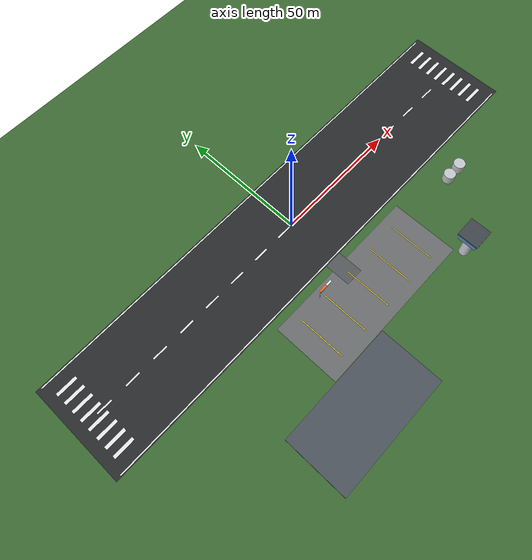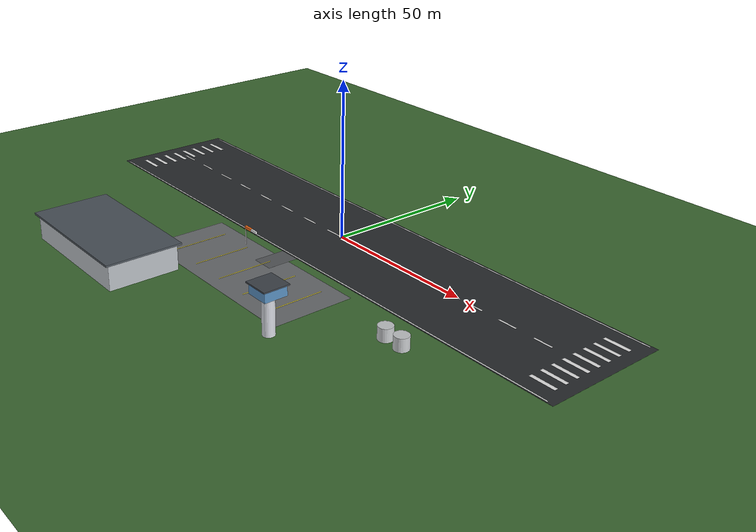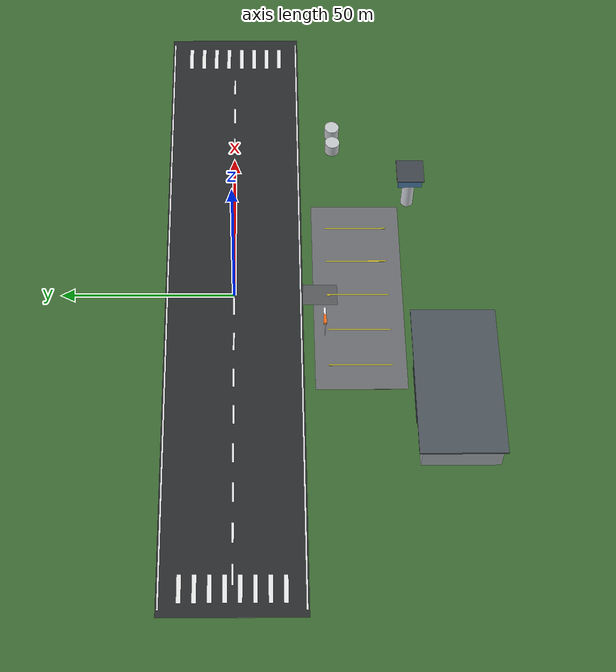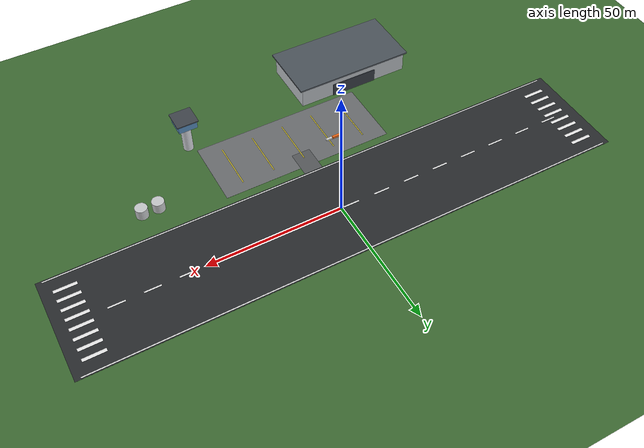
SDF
<sdf version="1.9">
 <world name="quad">
  <model name="grass">
   <static>true</static>
   <link name="link">
    <collision name="collision">
     <geometry><plane><normal>0 0 1</normal><size>1000 1000</size></plane></geometry>
    </collision>
    <visual name="visual">
     <geometry><plane><normal>0 0 1</normal><size>1000 1000</size></plane></geometry>
     <material><diffuse>0.24 0.42 0.20 1</diffuse></material>
    </visual>
   </link>
  </model>
  <model name="runway">
   <static>true</static>
   <link name="surface">
    <visual name="asphalt">
     <pose>0 0 0.02 0 0 0</pose>
     <geometry><box><size>200 40 0.04</size></box></geometry>
     <material><diffuse>0.16 0.17 0.18 1</diffuse></material>
    </visual>
    <visual name="edge_north">
     <pose>0 19.4 0.045 0 0 0</pose>
     <geometry><box><size>196 0.45 0.01</size></box></geometry>
     <material><diffuse>0.92 0.92 0.92 1</diffuse></material>
    </visual>
    <visual name="edge_south">
     <pose>0 -19.4 0.045 0 0 0</pose>
     <geometry><box><size>196 0.45 0.01</size></box></geometry>
     <material><diffuse>0.92 0.92 0.92 1</diffuse></material>
    </visual>
    <visual name="centre_00">
     <pose>-88 0 0.046 0 0 0</pose>
     <geometry><box><size>6 0.6 0.01</size></box></geometry>
     <material><diffuse>0.92 0.92 0.92 1</diffuse></material>
    </visual>
    <visual name="centre_01">
     <pose>-76 0 0.046 0 0 0</pose>
     <geometry><box><size>6 0.6 0.01</size></box></geometry>
     <material><diffuse>0.92 0.92 0.92 1</diffuse></material>
    </visual>
    <visual name="centre_02">
     <pose>-64 0 0.046 0 0 0</pose>
     <geometry><box><size>6 0.6 0.01</size></box></geometry>
     <material><diffuse>0.92 0.92 0.92 1</diffuse></material>
    </visual>
    <visual name="centre_03">
     <pose>-52 0 0.046 0 0 0</pose>
     <geometry><box><size>6 0.6 0.01</size></box></geometry>
     <material><diffuse>0.92 0.92 0.92 1</diffuse></material>
    </visual>
    <visual name="centre_04">
     <pose>-40 0 0.046 0 0 0</pose>
     <geometry><box><size>6 0.6 0.01</size></box></geometry>
     <material><diffuse>0.92 0.92 0.92 1</diffuse></material>
    </visual>
    <visual name="centre_05">
     <pose>-28 0 0.046 0 0 0</pose>
     <geometry><box><size>6 0.6 0.01</size></box></geometry>
     <material><diffuse>0.92 0.92 0.92 1</diffuse></material>
    </visual>
    <visual name="centre_06">
     <pose>-16 0 0.046 0 0 0</pose>
     <geometry><box><size>6 0.6 0.01</size></box></geometry>
     <material><diffuse>0.92 0.92 0.92 1</diffuse></material>
    </visual>
    <visual name="centre_07">
     <pose>-4 0 0.046 0 0 0</pose>
     <geometry><box><size>6 0.6 0.01</size></box></geometry>
     <material><diffuse>0.92 0.92 0.92 1</diffuse></material>
    </visual>
    <visual name="centre_08">
     <pose>8 0 0.046 0 0 0</pose>
     <geometry><box><size>6 0.6 0.01</size></box></geometry>
     <material><diffuse>0.92 0.92 0.92 1</diffuse></material>
    </visual>
    <visual name="centre_09">
     <pose>20 0 0.046 0 0 0</pose>
     <geometry><box><size>6 0.6 0.01</size></box></geometry>
     <material><diffuse>0.92 0.92 0.92 1</diffuse></material>
    </visual>
    <visual name="centre_10">
     <pose>32 0 0.046 0 0 0</pose>
     <geometry><box><size>6 0.6 0.01</size></box></geometry>
     <material><diffuse>0.92 0.92 0.92 1</diffuse></material>
    </visual>
    <visual name="centre_11">
     <pose>44 0 0.046 0 0 0</pose>
     <geometry><box><size>6 0.6 0.01</size></box></geometry>
     <material><diffuse>0.92 0.92 0.92 1</diffuse></material>
    </visual>
    <visual name="centre_12">
     <pose>56 0 0.046 0 0 0</pose>
     <geometry><box><size>6 0.6 0.01</size></box></geometry>
     <material><diffuse>0.92 0.92 0.92 1</diffuse></material>
    </visual>
    <visual name="centre_13">
     <pose>68 0 0.046 0 0 0</pose>
     <geometry><box><size>6 0.6 0.01</size></box></geometry>
     <material><diffuse>0.92 0.92 0.92 1</diffuse></material>
    </visual>
    <visual name="centre_14">
     <pose>80 0 0.046 0 0 0</pose>
     <geometry><box><size>6 0.6 0.01</size></box></geometry>
     <material><diffuse>0.92 0.92 0.92 1</diffuse></material>
    </visual>
    <visual name="threshold_w_00">
     <pose>-92 -14 0.046 0 0 0</pose>
     <geometry><box><size>8 1.2 0.01</size></box></geometry>
     <material><diffuse>0.92 0.92 0.92 1</diffuse></material>
    </visual>
    <visual name="threshold_w_01">
     <pose>-92 -10 0.046 0 0 0</pose>
     <geometry><box><size>8 1.2 0.01</size></box></geometry>
     <material><diffuse>0.92 0.92 0.92 1</diffuse></material>
    </visual>
    <visual name="threshold_w_02">
     <pose>-92 -6 0.046 0 0 0</pose>
     <geometry><box><size>8 1.2 0.01</size></box></geometry>
     <material><diffuse>0.92 0.92 0.92 1</diffuse></material>
    </visual>
    <visual name="threshold_w_03">
     <pose>-92 -2 0.046 0 0 0</pose>
     <geometry><box><size>8 1.2 0.01</size></box></geometry>
     <material><diffuse>0.92 0.92 0.92 1</diffuse></material>
    </visual>
    <visual name="threshold_w_04">
     <pose>-92 2 0.046 0 0 0</pose>
     <geometry><box><size>8 1.2 0.01</size></box></geometry>
     <material><diffuse>0.92 0.92 0.92 1</diffuse></material>
    </visual>
    <visual name="threshold_w_05">
     <pose>-92 6 0.046 0 0 0</pose>
     <geometry><box><size>8 1.2 0.01</size></box></geometry>
     <material><diffuse>0.92 0.92 0.92 1</diffuse></material>
    </visual>
    <visual name="threshold_w_06">
     <pose>-92 10 0.046 0 0 0</pose>
     <geometry><box><size>8 1.2 0.01</size></box></geometry>
     <material><diffuse>0.92 0.92 0.92 1</diffuse></material>
    </visual>
    <visual name="threshold_w_07">
     <pose>-92 14 0.046 0 0 0</pose>
     <geometry><box><size>8 1.2 0.01</size></box></geometry>
     <material><diffuse>0.92 0.92 0.92 1</diffuse></material>
    </visual>
    <visual name="threshold_e_00">
     <pose>92 -14 0.046 0 0 0</pose>
     <geometry><box><size>8 1.2 0.01</size></box></geometry>
     <material><diffuse>0.92 0.92 0.92 1</diffuse></material>
    </visual>
    <visual name="threshold_e_01">
     <pose>92 -10 0.046 0 0 0</pose>
     <geometry><box><size>8 1.2 0.01</size></box></geometry>
     <material><diffuse>0.92 0.92 0.92 1</diffuse></material>
    </visual>
    <visual name="threshold_e_02">
     <pose>92 -6 0.046 0 0 0</pose>
     <geometry><box><size>8 1.2 0.01</size></box></geometry>
     <material><diffuse>0.92 0.92 0.92 1</diffuse></material>
    </visual>
    <visual name="threshold_e_03">
     <pose>92 -2 0.046 0 0 0</pose>
     <geometry><box><size>8 1.2 0.01</size></box></geometry>
     <material><diffuse>0.92 0.92 0.92 1</diffuse></material>
    </visual>
    <visual name="threshold_e_04">
     <pose>92 2 0.046 0 0 0</pose>
     <geometry><box><size>8 1.2 0.01</size></box></geometry>
     <material><diffuse>0.92 0.92 0.92 1</diffuse></material>
    </visual>
    <visual name="threshold_e_05">
     <pose>92 6 0.046 0 0 0</pose>
     <geometry><box><size>8 1.2 0.01</size></box></geometry>
     <material><diffuse>0.92 0.92 0.92 1</diffuse></material>
    </visual>
    <visual name="threshold_e_06">
     <pose>92 10 0.046 0 0 0</pose>
     <geometry><box><size>8 1.2 0.01</size></box></geometry>
     <material><diffuse>0.92 0.92 0.92 1</diffuse></material>
    </visual>
    <visual name="threshold_e_07">
     <pose>92 14 0.046 0 0 0</pose>
     <geometry><box><size>8 1.2 0.01</size></box></geometry>
     <material><diffuse>0.92 0.92 0.92 1</diffuse></material>
    </visual>
   </link>
  </model>
  <model name="apron">
   <static>true</static>
   <link name="link">
    <visual name="concrete">
     <pose>0 -36 0.015 0 0 0</pose>
     <geometry><box><size>64 26 0.03</size></box></geometry>
     <material><diffuse>0.42 0.43 0.44 1</diffuse></material>
    </visual>
    <visual name="taxiway">
     <pose>0 -23 0.032 0 0 0</pose>
     <geometry><box><size>7 14 0.01</size></box></geometry>
     <material><diffuse>0.34 0.35 0.36 1</diffuse></material>
    </visual>
    <visual name="stand_00">
     <pose>-24 -36 0.033 0 0 0</pose>
     <geometry><box><size>0.4 18 0.01</size></box></geometry>
     <material><diffuse>0.85 0.78 0.20 1</diffuse></material>
    </visual>
    <visual name="stand_01">
     <pose>-12 -36 0.033 0 0 0</pose>
     <geometry><box><size>0.4 18 0.01</size></box></geometry>
     <material><diffuse>0.85 0.78 0.20 1</diffuse></material>
    </visual>
    <visual name="stand_02">
     <pose>0 -36 0.033 0 0 0</pose>
     <geometry><box><size>0.4 18 0.01</size></box></geometry>
     <material><diffuse>0.85 0.78 0.20 1</diffuse></material>
    </visual>
    <visual name="stand_03">
     <pose>12 -36 0.033 0 0 0</pose>
     <geometry><box><size>0.4 18 0.01</size></box></geometry>
     <material><diffuse>0.85 0.78 0.20 1</diffuse></material>
    </visual>
    <visual name="stand_04">
     <pose>24 -36 0.033 0 0 0</pose>
     <geometry><box><size>0.4 18 0.01</size></box></geometry>
     <material><diffuse>0.85 0.78 0.20 1</diffuse></material>
    </visual>
   </link>
  </model>
  <model name="hangar">
   <static>true</static>
   <link name="link">
    <visual name="body">
     <pose>-34 -62 4 0 0 0</pose>
     <geometry><box><size>44 22 8</size></box></geometry>
     <material><diffuse>0.72 0.74 0.76 1</diffuse></material>
    </visual>
    <visual name="roof">
     <pose>-34 -62 8.3 0 0 0</pose>
     <geometry><box><size>46 24 0.6</size></box></geometry>
     <material><diffuse>0.30 0.33 0.36 1</diffuse></material>
    </visual>
    <visual name="door">
     <pose>-34 -50.8 2.6 0 0 0</pose>
     <geometry><box><size>18 0.3 5.2</size></box></geometry>
     <material><diffuse>0.22 0.24 0.27 1</diffuse></material>
    </visual>
   </link>
  </model>
  <model name="tower">
   <static>true</static>
   <link name="link">
    <visual name="shaft">
     <pose>34 -52 6 0 0 0</pose>
     <geometry><cylinder><radius>1.8</radius><length>12</length></cylinder></geometry>
     <material><diffuse>0.84 0.85 0.88 1</diffuse></material>
    </visual>
    <visual name="cab">
     <pose>34 -52 13 0 0 0</pose>
     <geometry><box><size>7 7 3</size></box></geometry>
     <material><diffuse>0.34 0.55 0.74 1</diffuse></material>
    </visual>
    <visual name="cab_roof">
     <pose>34 -52 14.7 0 0 0</pose>
     <geometry><box><size>8 8 0.4</size></box></geometry>
     <material><diffuse>0.25 0.27 0.30 1</diffuse></material>
    </visual>
   </link>
  </model>
  <model name="windsock">
   <static>true</static>
   <link name="link">
    <visual name="pole">
     <pose>-14 -26 3 0 0 0</pose>
     <geometry><cylinder><radius>0.12</radius><length>6</length></cylinder></geometry>
     <material><diffuse>0.9 0.9 0.9 1</diffuse></material>
    </visual>
    <visual name="sock_a">
     <pose>-12.4 -26 5.8 0 0 0</pose>
     <geometry><box><size>3 0.8 0.8</size></box></geometry>
     <material><diffuse>0.95 0.42 0.10 1</diffuse></material>
    </visual>
    <visual name="sock_b">
     <pose>-9.6 -26 5.8 0 0 0</pose>
     <geometry><box><size>2.4 0.6 0.6</size></box></geometry>
     <material><diffuse>0.95 0.95 0.95 1</diffuse></material>
    </visual>
   </link>
  </model>
  <model name="fuel_tanks">
   <static>true</static>
   <link name="link">
    <visual name="tank_a">
     <pose>54 -30 2 0 0 0</pose>
     <geometry><cylinder><radius>2.2</radius><length>4</length></cylinder></geometry>
     <material><diffuse>0.78 0.79 0.80 1</diffuse></material>
    </visual>
    <visual name="tank_b">
     <pose>60 -30 2 0 0 0</pose>
     <geometry><cylinder><radius>2.2</radius><length>4</length></cylinder></geometry>
     <material><diffuse>0.78 0.79 0.80 1</diffuse></material>
    </visual>
   </link>
  </model>
 </world>
</sdf>
